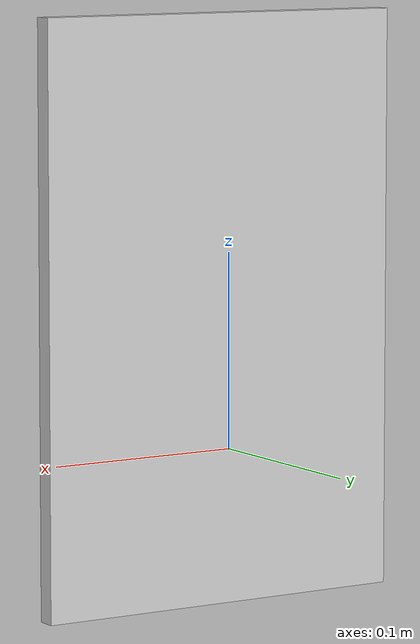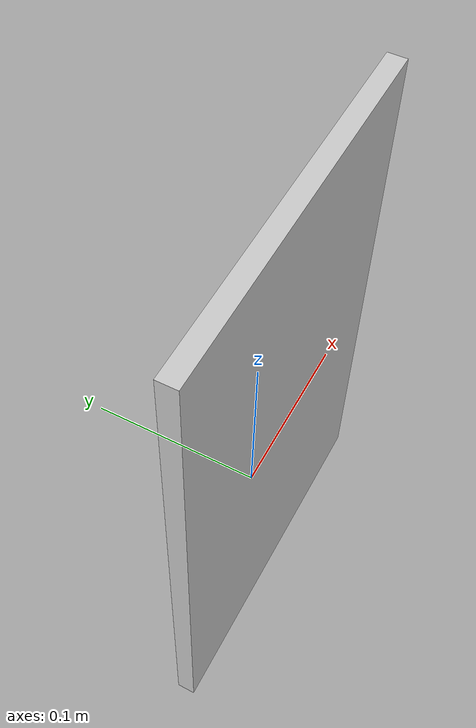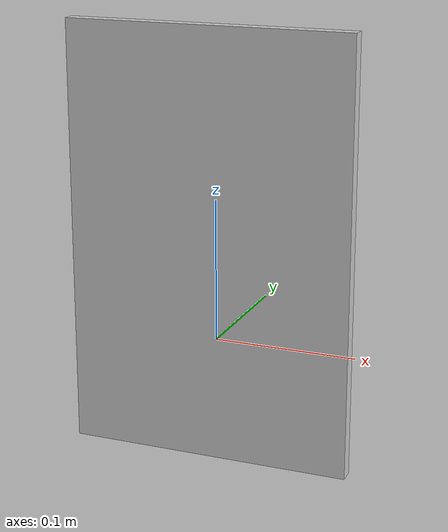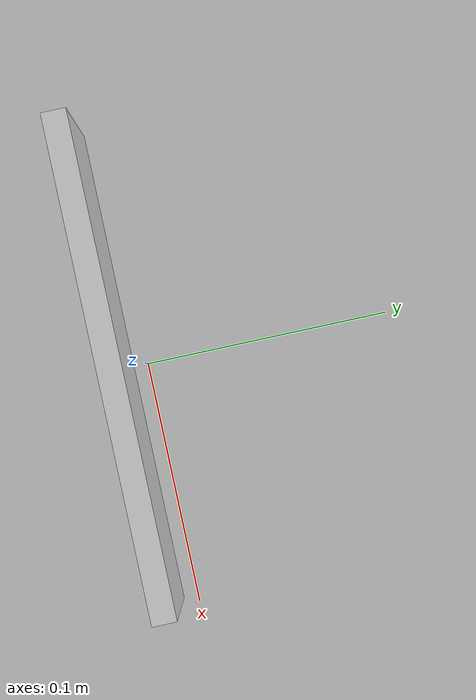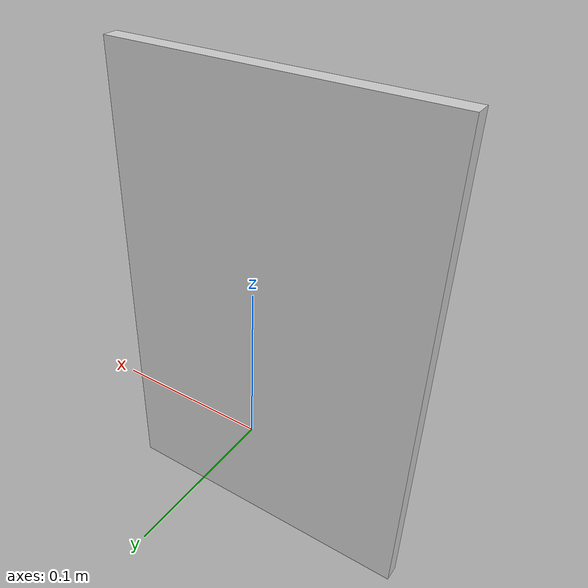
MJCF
<mujoco model="black_book">
  <asset>
  <texture file="black_book_texture.png" name="tex-black_book" type="2d" />
  <material name="black_book" reflectance="0.5" texrepeat="1 1" texture="tex-black_book" texuniform="false" />
  <mesh file="visual/black_book_vis.msh" name="black_book_vis" scale="0.4 0.4 0.4" /></asset>

  <texture name="tex-wall" type="2d" builtin="flat" rgb1="0.5 0.5 0.5" rgb2="0.5 0.5 0.5" width="32" height="32"/>
  <material name="wall_mat" texture="tex-wall" reflectance="0.3" shininess="0.2" specular="0.2"/>

  <worldbody>
    <body>
      <body name="object">
      <geom solimp="0.998 0.998 0.001" solref="0.001 1" density="500" friction="0.95 0.3 0.1" type="box" pos="-0.00047 -0.01215 0.06937" quat="0.00000 0.00000 1.00000 0.00000" size="0.1 0.005 0.15" group="1" rgba="0.8 0.8 0.8 1" conaffinity="0" contype="0" material="black_book" />
      <geom solimp="0.998 0.998 0.001" solref="0.001 1" density="500" friction="0.95 0.3 0.1" type="box" pos="-0.00047 -0.01215 0.06937" quat="0.00000 0.00000 1.00000 0.00000" size="0.1 0.005 0.15" group="0" rgba="0.8 0.8 0.8 1"  material="black_book"/>
      </body>
      <site rgba="0 0 0 0" size="0.005" pos="0 0 -0.06" name="bottom_site" />
      <site rgba="0 0 0 0" size="0.005" pos="0 0 0.04" name="top_site" />
      <site rgba="0 0 0 0" size="0.005" pos="0.025 0.025 0" name="horizontal_radius_site" />
    </body>
  </worldbody>
</mujoco>
